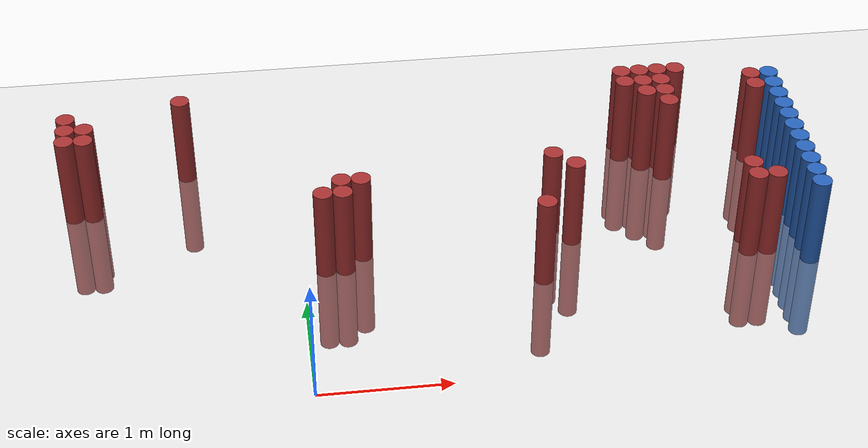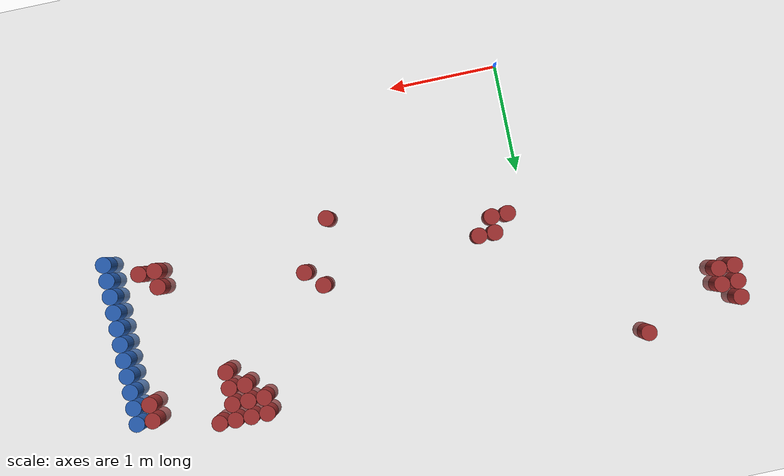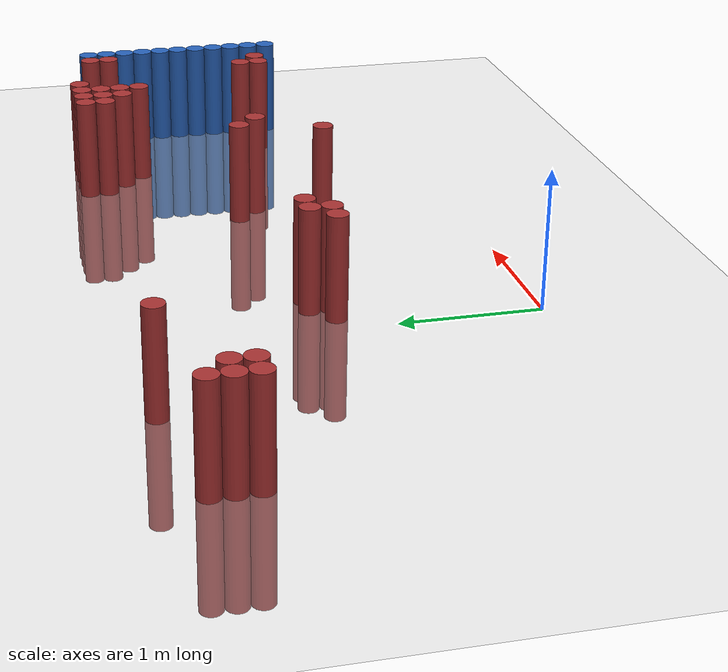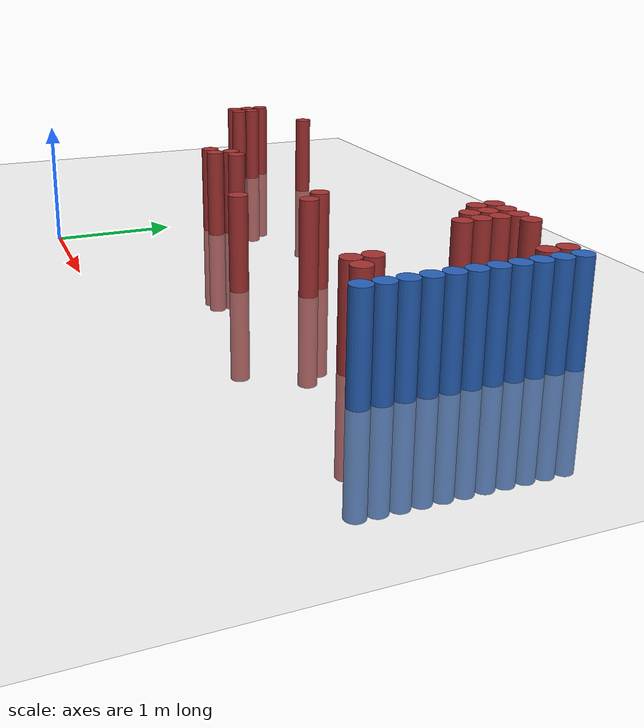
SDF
<sdf version="1.6">
 <world name="default">
  <model name="ground_plane">
   <static>1</static>
   <link name="link">
    <collision name="collision">
     <geometry><plane><normal>0 0 1</normal><size>100 100</size></plane></geometry>
     <surface><friction><ode><mu>100</mu><mu2>50</mu2></ode></friction></surface>
    </collision>
    <visual name="visual">
     <cast_shadows>0</cast_shadows>
     <geometry><plane><normal>0 0 1</normal><size>100 100</size></plane></geometry>
     <material>
      <script><uri>file://media/materials/scripts/gazebo.material</uri><name>Gazebo/Grey</name></script>
     </material>
    </visual>
   </link>
  </model>
  <model name="unit_cylinder_128">
   <static>1</static>
   <pose>3.925000 1.075000 0.000000 0.000000 0.000000 0.000000</pose>
   <link name="link">
    <inertial>
     <mass>1</mass>
     <inertia><ixx>0.145833</ixx><ixy>0</ixy><ixz>0</ixz><iyy>0.145833</iyy><iyz>0</iyz><izz>0.125</izz></inertia>
    </inertial>
    <collision name="collision">
     <geometry><cylinder><radius>0.075000</radius><length>1.5</length></cylinder></geometry>
    </collision>
    <visual name="visual">
     <geometry><cylinder><radius>0.075000</radius><length>1.5</length></cylinder></geometry>
     <material>
      <ambient>0.152000 0.379000 0.720000 1</ambient>
      <diffuse>0.152000 0.379000 0.720000 1</diffuse>
     </material>
     <material>
      <script><name>Gazebo/Grey</name><uri>file://media/materials/scripts/gazebo.material</uri></script>
     </material>
    </visual>
   </link>
  </model>
  <model name="unit_cylinder_130">
   <static>1</static>
   <pose>3.925000 1.225000 0.000000 0.000000 0.000000 0.000000</pose>
   <link name="link">
    <inertial>
     <mass>1</mass>
     <inertia><ixx>0.145833</ixx><ixy>0</ixy><ixz>0</ixz><iyy>0.145833</iyy><iyz>0</iyz><izz>0.125</izz></inertia>
    </inertial>
    <collision name="collision">
     <geometry><cylinder><radius>0.075000</radius><length>1.5</length></cylinder></geometry>
    </collision>
    <visual name="visual">
     <geometry><cylinder><radius>0.075000</radius><length>1.5</length></cylinder></geometry>
     <material>
      <ambient>0.152000 0.379000 0.720000 1</ambient>
      <diffuse>0.152000 0.379000 0.720000 1</diffuse>
     </material>
     <material>
      <script><name>Gazebo/Grey</name><uri>file://media/materials/scripts/gazebo.material</uri></script>
     </material>
    </visual>
   </link>
  </model>
  <model name="unit_cylinder_132">
   <static>1</static>
   <pose>3.925000 1.375000 0.000000 0.000000 0.000000 0.000000</pose>
   <link name="link">
    <inertial>
     <mass>1</mass>
     <inertia><ixx>0.145833</ixx><ixy>0</ixy><ixz>0</ixz><iyy>0.145833</iyy><iyz>0</iyz><izz>0.125</izz></inertia>
    </inertial>
    <collision name="collision">
     <geometry><cylinder><radius>0.075000</radius><length>1.5</length></cylinder></geometry>
    </collision>
    <visual name="visual">
     <geometry><cylinder><radius>0.075000</radius><length>1.5</length></cylinder></geometry>
     <material>
      <ambient>0.152000 0.379000 0.720000 1</ambient>
      <diffuse>0.152000 0.379000 0.720000 1</diffuse>
     </material>
     <material>
      <script><name>Gazebo/Grey</name><uri>file://media/materials/scripts/gazebo.material</uri></script>
     </material>
    </visual>
   </link>
  </model>
  <model name="unit_cylinder_134">
   <static>1</static>
   <pose>3.925000 1.525000 0.000000 0.000000 0.000000 0.000000</pose>
   <link name="link">
    <inertial>
     <mass>1</mass>
     <inertia><ixx>0.145833</ixx><ixy>0</ixy><ixz>0</ixz><iyy>0.145833</iyy><iyz>0</iyz><izz>0.125</izz></inertia>
    </inertial>
    <collision name="collision">
     <geometry><cylinder><radius>0.075000</radius><length>1.5</length></cylinder></geometry>
    </collision>
    <visual name="visual">
     <geometry><cylinder><radius>0.075000</radius><length>1.5</length></cylinder></geometry>
     <material>
      <ambient>0.152000 0.379000 0.720000 1</ambient>
      <diffuse>0.152000 0.379000 0.720000 1</diffuse>
     </material>
     <material>
      <script><name>Gazebo/Grey</name><uri>file://media/materials/scripts/gazebo.material</uri></script>
     </material>
    </visual>
   </link>
  </model>
  <model name="unit_cylinder_136">
   <static>1</static>
   <pose>3.925000 1.675000 0.000000 0.000000 0.000000 0.000000</pose>
   <link name="link">
    <inertial>
     <mass>1</mass>
     <inertia><ixx>0.145833</ixx><ixy>0</ixy><ixz>0</ixz><iyy>0.145833</iyy><iyz>0</iyz><izz>0.125</izz></inertia>
    </inertial>
    <collision name="collision">
     <geometry><cylinder><radius>0.075000</radius><length>1.5</length></cylinder></geometry>
    </collision>
    <visual name="visual">
     <geometry><cylinder><radius>0.075000</radius><length>1.5</length></cylinder></geometry>
     <material>
      <ambient>0.152000 0.379000 0.720000 1</ambient>
      <diffuse>0.152000 0.379000 0.720000 1</diffuse>
     </material>
     <material>
      <script><name>Gazebo/Grey</name><uri>file://media/materials/scripts/gazebo.material</uri></script>
     </material>
    </visual>
   </link>
  </model>
  <model name="unit_cylinder_138">
   <static>1</static>
   <pose>3.925000 1.825000 0.000000 0.000000 0.000000 0.000000</pose>
   <link name="link">
    <inertial>
     <mass>1</mass>
     <inertia><ixx>0.145833</ixx><ixy>0</ixy><ixz>0</ixz><iyy>0.145833</iyy><iyz>0</iyz><izz>0.125</izz></inertia>
    </inertial>
    <collision name="collision">
     <geometry><cylinder><radius>0.075000</radius><length>1.5</length></cylinder></geometry>
    </collision>
    <visual name="visual">
     <geometry><cylinder><radius>0.075000</radius><length>1.5</length></cylinder></geometry>
     <material>
      <ambient>0.152000 0.379000 0.720000 1</ambient>
      <diffuse>0.152000 0.379000 0.720000 1</diffuse>
     </material>
     <material>
      <script><name>Gazebo/Grey</name><uri>file://media/materials/scripts/gazebo.material</uri></script>
     </material>
    </visual>
   </link>
  </model>
  <model name="unit_cylinder_140">
   <static>1</static>
   <pose>3.925000 1.975000 0.000000 0.000000 0.000000 0.000000</pose>
   <link name="link">
    <inertial>
     <mass>1</mass>
     <inertia><ixx>0.145833</ixx><ixy>0</ixy><ixz>0</ixz><iyy>0.145833</iyy><iyz>0</iyz><izz>0.125</izz></inertia>
    </inertial>
    <collision name="collision">
     <geometry><cylinder><radius>0.075000</radius><length>1.5</length></cylinder></geometry>
    </collision>
    <visual name="visual">
     <geometry><cylinder><radius>0.075000</radius><length>1.5</length></cylinder></geometry>
     <material>
      <ambient>0.152000 0.379000 0.720000 1</ambient>
      <diffuse>0.152000 0.379000 0.720000 1</diffuse>
     </material>
     <material>
      <script><name>Gazebo/Grey</name><uri>file://media/materials/scripts/gazebo.material</uri></script>
     </material>
    </visual>
   </link>
  </model>
  <model name="unit_cylinder_142">
   <static>1</static>
   <pose>3.925000 2.125000 0.000000 0.000000 0.000000 0.000000</pose>
   <link name="link">
    <inertial>
     <mass>1</mass>
     <inertia><ixx>0.145833</ixx><ixy>0</ixy><ixz>0</ixz><iyy>0.145833</iyy><iyz>0</iyz><izz>0.125</izz></inertia>
    </inertial>
    <collision name="collision">
     <geometry><cylinder><radius>0.075000</radius><length>1.5</length></cylinder></geometry>
    </collision>
    <visual name="visual">
     <geometry><cylinder><radius>0.075000</radius><length>1.5</length></cylinder></geometry>
     <material>
      <ambient>0.152000 0.379000 0.720000 1</ambient>
      <diffuse>0.152000 0.379000 0.720000 1</diffuse>
     </material>
     <material>
      <script><name>Gazebo/Grey</name><uri>file://media/materials/scripts/gazebo.material</uri></script>
     </material>
    </visual>
   </link>
  </model>
  <model name="unit_cylinder_144">
   <static>1</static>
   <pose>3.925000 2.275000 0.000000 0.000000 0.000000 0.000000</pose>
   <link name="link">
    <inertial>
     <mass>1</mass>
     <inertia><ixx>0.145833</ixx><ixy>0</ixy><ixz>0</ixz><iyy>0.145833</iyy><iyz>0</iyz><izz>0.125</izz></inertia>
    </inertial>
    <collision name="collision">
     <geometry><cylinder><radius>0.075000</radius><length>1.5</length></cylinder></geometry>
    </collision>
    <visual name="visual">
     <geometry><cylinder><radius>0.075000</radius><length>1.5</length></cylinder></geometry>
     <material>
      <ambient>0.152000 0.379000 0.720000 1</ambient>
      <diffuse>0.152000 0.379000 0.720000 1</diffuse>
     </material>
     <material>
      <script><name>Gazebo/Grey</name><uri>file://media/materials/scripts/gazebo.material</uri></script>
     </material>
    </visual>
   </link>
  </model>
  <model name="unit_cylinder_146">
   <static>1</static>
   <pose>3.925000 2.425000 0.000000 0.000000 0.000000 0.000000</pose>
   <link name="link">
    <inertial>
     <mass>1</mass>
     <inertia><ixx>0.145833</ixx><ixy>0</ixy><ixz>0</ixz><iyy>0.145833</iyy><iyz>0</iyz><izz>0.125</izz></inertia>
    </inertial>
    <collision name="collision">
     <geometry><cylinder><radius>0.075000</radius><length>1.5</length></cylinder></geometry>
    </collision>
    <visual name="visual">
     <geometry><cylinder><radius>0.075000</radius><length>1.5</length></cylinder></geometry>
     <material>
      <ambient>0.152000 0.379000 0.720000 1</ambient>
      <diffuse>0.152000 0.379000 0.720000 1</diffuse>
     </material>
     <material>
      <script><name>Gazebo/Grey</name><uri>file://media/materials/scripts/gazebo.material</uri></script>
     </material>
    </visual>
   </link>
  </model>
  <model name="unit_cylinder_148">
   <static>1</static>
   <pose>3.925000 2.575000 0.000000 0.000000 0.000000 0.000000</pose>
   <link name="link">
    <inertial>
     <mass>1</mass>
     <inertia><ixx>0.145833</ixx><ixy>0</ixy><ixz>0</ixz><iyy>0.145833</iyy><iyz>0</iyz><izz>0.125</izz></inertia>
    </inertial>
    <collision name="collision">
     <geometry><cylinder><radius>0.075000</radius><length>1.5</length></cylinder></geometry>
    </collision>
    <visual name="visual">
     <geometry><cylinder><radius>0.075000</radius><length>1.5</length></cylinder></geometry>
     <material>
      <ambient>0.152000 0.379000 0.720000 1</ambient>
      <diffuse>0.152000 0.379000 0.720000 1</diffuse>
     </material>
     <material>
      <script><name>Gazebo/Grey</name><uri>file://media/materials/scripts/gazebo.material</uri></script>
     </material>
    </visual>
   </link>
  </model>
  <model name="unit_cylinder_312">
   <static>1</static>
   <pose>-1.775000 2.275000 0.000000 0.000000 0.000000 0.000000</pose>
   <link name="link">
    <inertial>
     <mass>1</mass>
     <inertia><ixx>0.145833</ixx><ixy>0</ixy><ixz>0</ixz><iyy>0.145833</iyy><iyz>0</iyz><izz>0.125</izz></inertia>
    </inertial>
    <collision name="collision">
     <geometry><cylinder><radius>0.075000</radius><length>1.5</length></cylinder></geometry>
    </collision>
    <visual name="visual">
     <geometry><cylinder><radius>0.075000</radius><length>1.5</length></cylinder></geometry>
     <material>
      <ambient>0.648000 0.192000 0.192000 1</ambient>
      <diffuse>0.648000 0.192000 0.192000 1</diffuse>
     </material>
     <material>
      <script><name>Gazebo/Grey</name><uri>file://media/materials/scripts/gazebo.material</uri></script>
     </material>
    </visual>
   </link>
  </model>
  <model name="unit_cylinder_313">
   <static>1</static>
   <pose>-1.775000 2.425000 0.000000 0.000000 0.000000 0.000000</pose>
   <link name="link">
    <inertial>
     <mass>1</mass>
     <inertia><ixx>0.145833</ixx><ixy>0</ixy><ixz>0</ixz><iyy>0.145833</iyy><iyz>0</iyz><izz>0.125</izz></inertia>
    </inertial>
    <collision name="collision">
     <geometry><cylinder><radius>0.075000</radius><length>1.5</length></cylinder></geometry>
    </collision>
    <visual name="visual">
     <geometry><cylinder><radius>0.075000</radius><length>1.5</length></cylinder></geometry>
     <material>
      <ambient>0.648000 0.192000 0.192000 1</ambient>
      <diffuse>0.648000 0.192000 0.192000 1</diffuse>
     </material>
     <material>
      <script><name>Gazebo/Grey</name><uri>file://media/materials/scripts/gazebo.material</uri></script>
     </material>
    </visual>
   </link>
  </model>
  <model name="unit_cylinder_314">
   <static>1</static>
   <pose>-1.775000 2.575000 0.000000 0.000000 0.000000 0.000000</pose>
   <link name="link">
    <inertial>
     <mass>1</mass>
     <inertia><ixx>0.145833</ixx><ixy>0</ixy><ixz>0</ixz><iyy>0.145833</iyy><iyz>0</iyz><izz>0.125</izz></inertia>
    </inertial>
    <collision name="collision">
     <geometry><cylinder><radius>0.075000</radius><length>1.5</length></cylinder></geometry>
    </collision>
    <visual name="visual">
     <geometry><cylinder><radius>0.075000</radius><length>1.5</length></cylinder></geometry>
     <material>
      <ambient>0.648000 0.192000 0.192000 1</ambient>
      <diffuse>0.648000 0.192000 0.192000 1</diffuse>
     </material>
     <material>
      <script><name>Gazebo/Grey</name><uri>file://media/materials/scripts/gazebo.material</uri></script>
     </material>
    </visual>
   </link>
  </model>
  <model name="unit_cylinder_317">
   <static>1</static>
   <pose>-1.625000 2.275000 0.000000 0.000000 0.000000 0.000000</pose>
   <link name="link">
    <inertial>
     <mass>1</mass>
     <inertia><ixx>0.145833</ixx><ixy>0</ixy><ixz>0</ixz><iyy>0.145833</iyy><iyz>0</iyz><izz>0.125</izz></inertia>
    </inertial>
    <collision name="collision">
     <geometry><cylinder><radius>0.075000</radius><length>1.5</length></cylinder></geometry>
    </collision>
    <visual name="visual">
     <geometry><cylinder><radius>0.075000</radius><length>1.5</length></cylinder></geometry>
     <material>
      <ambient>0.648000 0.192000 0.192000 1</ambient>
      <diffuse>0.648000 0.192000 0.192000 1</diffuse>
     </material>
     <material>
      <script><name>Gazebo/Grey</name><uri>file://media/materials/scripts/gazebo.material</uri></script>
     </material>
    </visual>
   </link>
  </model>
  <model name="unit_cylinder_318">
   <static>1</static>
   <pose>-1.625000 2.425000 0.000000 0.000000 0.000000 0.000000</pose>
   <link name="link">
    <inertial>
     <mass>1</mass>
     <inertia><ixx>0.145833</ixx><ixy>0</ixy><ixz>0</ixz><iyy>0.145833</iyy><iyz>0</iyz><izz>0.125</izz></inertia>
    </inertial>
    <collision name="collision">
     <geometry><cylinder><radius>0.075000</radius><length>1.5</length></cylinder></geometry>
    </collision>
    <visual name="visual">
     <geometry><cylinder><radius>0.075000</radius><length>1.5</length></cylinder></geometry>
     <material>
      <ambient>0.648000 0.192000 0.192000 1</ambient>
      <diffuse>0.648000 0.192000 0.192000 1</diffuse>
     </material>
     <material>
      <script><name>Gazebo/Grey</name><uri>file://media/materials/scripts/gazebo.material</uri></script>
     </material>
    </visual>
   </link>
  </model>
  <model name="unit_cylinder_330">
   <static>1</static>
   <pose>-0.875000 2.725000 0.000000 0.000000 0.000000 0.000000</pose>
   <link name="link">
    <inertial>
     <mass>1</mass>
     <inertia><ixx>0.145833</ixx><ixy>0</ixy><ixz>0</ixz><iyy>0.145833</iyy><iyz>0</iyz><izz>0.125</izz></inertia>
    </inertial>
    <collision name="collision">
     <geometry><cylinder><radius>0.075000</radius><length>1.5</length></cylinder></geometry>
    </collision>
    <visual name="visual">
     <geometry><cylinder><radius>0.075000</radius><length>1.5</length></cylinder></geometry>
     <material>
      <ambient>0.648000 0.192000 0.192000 1</ambient>
      <diffuse>0.648000 0.192000 0.192000 1</diffuse>
     </material>
     <material>
      <script><name>Gazebo/Grey</name><uri>file://media/materials/scripts/gazebo.material</uri></script>
     </material>
    </visual>
   </link>
  </model>
  <model name="unit_cylinder_360">
   <static>1</static>
   <pose>0.175000 1.375000 0.000000 0.000000 0.000000 0.000000</pose>
   <link name="link">
    <inertial>
     <mass>1</mass>
     <inertia><ixx>0.145833</ixx><ixy>0</ixy><ixz>0</ixz><iyy>0.145833</iyy><iyz>0</iyz><izz>0.125</izz></inertia>
    </inertial>
    <collision name="collision">
     <geometry><cylinder><radius>0.075000</radius><length>1.5</length></cylinder></geometry>
    </collision>
    <visual name="visual">
     <geometry><cylinder><radius>0.075000</radius><length>1.5</length></cylinder></geometry>
     <material>
      <ambient>0.648000 0.192000 0.192000 1</ambient>
      <diffuse>0.648000 0.192000 0.192000 1</diffuse>
     </material>
     <material>
      <script><name>Gazebo/Grey</name><uri>file://media/materials/scripts/gazebo.material</uri></script>
     </material>
    </visual>
   </link>
  </model>
  <model name="unit_cylinder_364">
   <static>1</static>
   <pose>0.325000 1.375000 0.000000 0.000000 0.000000 0.000000</pose>
   <link name="link">
    <inertial>
     <mass>1</mass>
     <inertia><ixx>0.145833</ixx><ixy>0</ixy><ixz>0</ixz><iyy>0.145833</iyy><iyz>0</iyz><izz>0.125</izz></inertia>
    </inertial>
    <collision name="collision">
     <geometry><cylinder><radius>0.075000</radius><length>1.5</length></cylinder></geometry>
    </collision>
    <visual name="visual">
     <geometry><cylinder><radius>0.075000</radius><length>1.5</length></cylinder></geometry>
     <material>
      <ambient>0.648000 0.192000 0.192000 1</ambient>
      <diffuse>0.648000 0.192000 0.192000 1</diffuse>
     </material>
     <material>
      <script><name>Gazebo/Grey</name><uri>file://media/materials/scripts/gazebo.material</uri></script>
     </material>
    </visual>
   </link>
  </model>
  <model name="unit_cylinder_365">
   <static>1</static>
   <pose>0.325000 1.525000 0.000000 0.000000 0.000000 0.000000</pose>
   <link name="link">
    <inertial>
     <mass>1</mass>
     <inertia><ixx>0.145833</ixx><ixy>0</ixy><ixz>0</ixz><iyy>0.145833</iyy><iyz>0</iyz><izz>0.125</izz></inertia>
    </inertial>
    <collision name="collision">
     <geometry><cylinder><radius>0.075000</radius><length>1.5</length></cylinder></geometry>
    </collision>
    <visual name="visual">
     <geometry><cylinder><radius>0.075000</radius><length>1.5</length></cylinder></geometry>
     <material>
      <ambient>0.648000 0.192000 0.192000 1</ambient>
      <diffuse>0.648000 0.192000 0.192000 1</diffuse>
     </material>
     <material>
      <script><name>Gazebo/Grey</name><uri>file://media/materials/scripts/gazebo.material</uri></script>
     </material>
    </visual>
   </link>
  </model>
  <model name="unit_cylinder_368">
   <static>1</static>
   <pose>0.475000 1.525000 0.000000 0.000000 0.000000 0.000000</pose>
   <link name="link">
    <inertial>
     <mass>1</mass>
     <inertia><ixx>0.145833</ixx><ixy>0</ixy><ixz>0</ixz><iyy>0.145833</iyy><iyz>0</iyz><izz>0.125</izz></inertia>
    </inertial>
    <collision name="collision">
     <geometry><cylinder><radius>0.075000</radius><length>1.5</length></cylinder></geometry>
    </collision>
    <visual name="visual">
     <geometry><cylinder><radius>0.075000</radius><length>1.5</length></cylinder></geometry>
     <material>
      <ambient>0.648000 0.192000 0.192000 1</ambient>
      <diffuse>0.648000 0.192000 0.192000 1</diffuse>
     </material>
     <material>
      <script><name>Gazebo/Grey</name><uri>file://media/materials/scripts/gazebo.material</uri></script>
     </material>
    </visual>
   </link>
  </model>
  <model name="unit_cylinder_377">
   <static>1</static>
   <pose>1.825000 1.075000 0.000000 0.000000 0.000000 0.000000</pose>
   <link name="link">
    <inertial>
     <mass>1</mass>
     <inertia><ixx>0.145833</ixx><ixy>0</ixy><ixz>0</ixz><iyy>0.145833</iyy><iyz>0</iyz><izz>0.125</izz></inertia>
    </inertial>
    <collision name="collision">
     <geometry><cylinder><radius>0.075000</radius><length>1.5</length></cylinder></geometry>
    </collision>
    <visual name="visual">
     <geometry><cylinder><radius>0.075000</radius><length>1.5</length></cylinder></geometry>
     <material>
      <ambient>0.648000 0.192000 0.192000 1</ambient>
      <diffuse>0.648000 0.192000 0.192000 1</diffuse>
     </material>
     <material>
      <script><name>Gazebo/Grey</name><uri>file://media/materials/scripts/gazebo.material</uri></script>
     </material>
    </visual>
   </link>
  </model>
  <model name="unit_cylinder_380">
   <static>1</static>
   <pose>1.975000 1.675000 0.000000 0.000000 0.000000 0.000000</pose>
   <link name="link">
    <inertial>
     <mass>1</mass>
     <inertia><ixx>0.145833</ixx><ixy>0</ixy><ixz>0</ixz><iyy>0.145833</iyy><iyz>0</iyz><izz>0.125</izz></inertia>
    </inertial>
    <collision name="collision">
     <geometry><cylinder><radius>0.075000</radius><length>1.5</length></cylinder></geometry>
    </collision>
    <visual name="visual">
     <geometry><cylinder><radius>0.075000</radius><length>1.5</length></cylinder></geometry>
     <material>
      <ambient>0.648000 0.192000 0.192000 1</ambient>
      <diffuse>0.648000 0.192000 0.192000 1</diffuse>
     </material>
     <material>
      <script><name>Gazebo/Grey</name><uri>file://media/materials/scripts/gazebo.material</uri></script>
     </material>
    </visual>
   </link>
  </model>
  <model name="unit_cylinder_385">
   <static>1</static>
   <pose>2.125000 1.525000 0.000000 0.000000 0.000000 0.000000</pose>
   <link name="link">
    <inertial>
     <mass>1</mass>
     <inertia><ixx>0.145833</ixx><ixy>0</ixy><ixz>0</ixz><iyy>0.145833</iyy><iyz>0</iyz><izz>0.125</izz></inertia>
    </inertial>
    <collision name="collision">
     <geometry><cylinder><radius>0.075000</radius><length>1.5</length></cylinder></geometry>
    </collision>
    <visual name="visual">
     <geometry><cylinder><radius>0.075000</radius><length>1.5</length></cylinder></geometry>
     <material>
      <ambient>0.648000 0.192000 0.192000 1</ambient>
      <diffuse>0.648000 0.192000 0.192000 1</diffuse>
     </material>
     <material>
      <script><name>Gazebo/Grey</name><uri>file://media/materials/scripts/gazebo.material</uri></script>
     </material>
    </visual>
   </link>
  </model>
  <model name="unit_cylinder_403">
   <static>1</static>
   <pose>2.725000 2.575000 0.000000 0.000000 0.000000 0.000000</pose>
   <link name="link">
    <inertial>
     <mass>1</mass>
     <inertia><ixx>0.145833</ixx><ixy>0</ixy><ixz>0</ixz><iyy>0.145833</iyy><iyz>0</iyz><izz>0.125</izz></inertia>
    </inertial>
    <collision name="collision">
     <geometry><cylinder><radius>0.075000</radius><length>1.5</length></cylinder></geometry>
    </collision>
    <visual name="visual">
     <geometry><cylinder><radius>0.075000</radius><length>1.5</length></cylinder></geometry>
     <material>
      <ambient>0.648000 0.192000 0.192000 1</ambient>
      <diffuse>0.648000 0.192000 0.192000 1</diffuse>
     </material>
     <material>
      <script><name>Gazebo/Grey</name><uri>file://media/materials/scripts/gazebo.material</uri></script>
     </material>
    </visual>
   </link>
  </model>
  <model name="unit_cylinder_404">
   <static>1</static>
   <pose>2.725000 2.725000 0.000000 0.000000 0.000000 0.000000</pose>
   <link name="link">
    <inertial>
     <mass>1</mass>
     <inertia><ixx>0.145833</ixx><ixy>0</ixy><ixz>0</ixz><iyy>0.145833</iyy><iyz>0</iyz><izz>0.125</izz></inertia>
    </inertial>
    <collision name="collision">
     <geometry><cylinder><radius>0.075000</radius><length>1.5</length></cylinder></geometry>
    </collision>
    <visual name="visual">
     <geometry><cylinder><radius>0.075000</radius><length>1.5</length></cylinder></geometry>
     <material>
      <ambient>0.648000 0.192000 0.192000 1</ambient>
      <diffuse>0.648000 0.192000 0.192000 1</diffuse>
     </material>
     <material>
      <script><name>Gazebo/Grey</name><uri>file://media/materials/scripts/gazebo.material</uri></script>
     </material>
    </visual>
   </link>
  </model>
  <model name="unit_cylinder_407">
   <static>1</static>
   <pose>2.875000 2.425000 0.000000 0.000000 0.000000 0.000000</pose>
   <link name="link">
    <inertial>
     <mass>1</mass>
     <inertia><ixx>0.145833</ixx><ixy>0</ixy><ixz>0</ixz><iyy>0.145833</iyy><iyz>0</iyz><izz>0.125</izz></inertia>
    </inertial>
    <collision name="collision">
     <geometry><cylinder><radius>0.075000</radius><length>1.5</length></cylinder></geometry>
    </collision>
    <visual name="visual">
     <geometry><cylinder><radius>0.075000</radius><length>1.5</length></cylinder></geometry>
     <material>
      <ambient>0.648000 0.192000 0.192000 1</ambient>
      <diffuse>0.648000 0.192000 0.192000 1</diffuse>
     </material>
     <material>
      <script><name>Gazebo/Grey</name><uri>file://media/materials/scripts/gazebo.material</uri></script>
     </material>
    </visual>
   </link>
  </model>
  <model name="unit_cylinder_408">
   <static>1</static>
   <pose>2.875000 2.575000 0.000000 0.000000 0.000000 0.000000</pose>
   <link name="link">
    <inertial>
     <mass>1</mass>
     <inertia><ixx>0.145833</ixx><ixy>0</ixy><ixz>0</ixz><iyy>0.145833</iyy><iyz>0</iyz><izz>0.125</izz></inertia>
    </inertial>
    <collision name="collision">
     <geometry><cylinder><radius>0.075000</radius><length>1.5</length></cylinder></geometry>
    </collision>
    <visual name="visual">
     <geometry><cylinder><radius>0.075000</radius><length>1.5</length></cylinder></geometry>
     <material>
      <ambient>0.648000 0.192000 0.192000 1</ambient>
      <diffuse>0.648000 0.192000 0.192000 1</diffuse>
     </material>
     <material>
      <script><name>Gazebo/Grey</name><uri>file://media/materials/scripts/gazebo.material</uri></script>
     </material>
    </visual>
   </link>
  </model>
  <model name="unit_cylinder_409">
   <static>1</static>
   <pose>2.875000 2.725000 0.000000 0.000000 0.000000 0.000000</pose>
   <link name="link">
    <inertial>
     <mass>1</mass>
     <inertia><ixx>0.145833</ixx><ixy>0</ixy><ixz>0</ixz><iyy>0.145833</iyy><iyz>0</iyz><izz>0.125</izz></inertia>
    </inertial>
    <collision name="collision">
     <geometry><cylinder><radius>0.075000</radius><length>1.5</length></cylinder></geometry>
    </collision>
    <visual name="visual">
     <geometry><cylinder><radius>0.075000</radius><length>1.5</length></cylinder></geometry>
     <material>
      <ambient>0.648000 0.192000 0.192000 1</ambient>
      <diffuse>0.648000 0.192000 0.192000 1</diffuse>
     </material>
     <material>
      <script><name>Gazebo/Grey</name><uri>file://media/materials/scripts/gazebo.material</uri></script>
     </material>
    </visual>
   </link>
  </model>
  <model name="unit_cylinder_414">
   <static>1</static>
   <pose>3.025000 2.275000 0.000000 0.000000 0.000000 0.000000</pose>
   <link name="link">
    <inertial>
     <mass>1</mass>
     <inertia><ixx>0.145833</ixx><ixy>0</ixy><ixz>0</ixz><iyy>0.145833</iyy><iyz>0</iyz><izz>0.125</izz></inertia>
    </inertial>
    <collision name="collision">
     <geometry><cylinder><radius>0.075000</radius><length>1.5</length></cylinder></geometry>
    </collision>
    <visual name="visual">
     <geometry><cylinder><radius>0.075000</radius><length>1.5</length></cylinder></geometry>
     <material>
      <ambient>0.648000 0.192000 0.192000 1</ambient>
      <diffuse>0.648000 0.192000 0.192000 1</diffuse>
     </material>
     <material>
      <script><name>Gazebo/Grey</name><uri>file://media/materials/scripts/gazebo.material</uri></script>
     </material>
    </visual>
   </link>
  </model>
  <model name="unit_cylinder_415">
   <static>1</static>
   <pose>3.025000 2.425000 0.000000 0.000000 0.000000 0.000000</pose>
   <link name="link">
    <inertial>
     <mass>1</mass>
     <inertia><ixx>0.145833</ixx><ixy>0</ixy><ixz>0</ixz><iyy>0.145833</iyy><iyz>0</iyz><izz>0.125</izz></inertia>
    </inertial>
    <collision name="collision">
     <geometry><cylinder><radius>0.075000</radius><length>1.5</length></cylinder></geometry>
    </collision>
    <visual name="visual">
     <geometry><cylinder><radius>0.075000</radius><length>1.5</length></cylinder></geometry>
     <material>
      <ambient>0.648000 0.192000 0.192000 1</ambient>
      <diffuse>0.648000 0.192000 0.192000 1</diffuse>
     </material>
     <material>
      <script><name>Gazebo/Grey</name><uri>file://media/materials/scripts/gazebo.material</uri></script>
     </material>
    </visual>
   </link>
  </model>
  <model name="unit_cylinder_416">
   <static>1</static>
   <pose>3.025000 2.575000 0.000000 0.000000 0.000000 0.000000</pose>
   <link name="link">
    <inertial>
     <mass>1</mass>
     <inertia><ixx>0.145833</ixx><ixy>0</ixy><ixz>0</ixz><iyy>0.145833</iyy><iyz>0</iyz><izz>0.125</izz></inertia>
    </inertial>
    <collision name="collision">
     <geometry><cylinder><radius>0.075000</radius><length>1.5</length></cylinder></geometry>
    </collision>
    <visual name="visual">
     <geometry><cylinder><radius>0.075000</radius><length>1.5</length></cylinder></geometry>
     <material>
      <ambient>0.648000 0.192000 0.192000 1</ambient>
      <diffuse>0.648000 0.192000 0.192000 1</diffuse>
     </material>
     <material>
      <script><name>Gazebo/Grey</name><uri>file://media/materials/scripts/gazebo.material</uri></script>
     </material>
    </visual>
   </link>
  </model>
  <model name="unit_cylinder_417">
   <static>1</static>
   <pose>3.025000 2.725000 0.000000 0.000000 0.000000 0.000000</pose>
   <link name="link">
    <inertial>
     <mass>1</mass>
     <inertia><ixx>0.145833</ixx><ixy>0</ixy><ixz>0</ixz><iyy>0.145833</iyy><iyz>0</iyz><izz>0.125</izz></inertia>
    </inertial>
    <collision name="collision">
     <geometry><cylinder><radius>0.075000</radius><length>1.5</length></cylinder></geometry>
    </collision>
    <visual name="visual">
     <geometry><cylinder><radius>0.075000</radius><length>1.5</length></cylinder></geometry>
     <material>
      <ambient>0.648000 0.192000 0.192000 1</ambient>
      <diffuse>0.648000 0.192000 0.192000 1</diffuse>
     </material>
     <material>
      <script><name>Gazebo/Grey</name><uri>file://media/materials/scripts/gazebo.material</uri></script>
     </material>
    </visual>
   </link>
  </model>
  <model name="unit_cylinder_424">
   <static>1</static>
   <pose>3.175000 2.725000 0.000000 0.000000 0.000000 0.000000</pose>
   <link name="link">
    <inertial>
     <mass>1</mass>
     <inertia><ixx>0.145833</ixx><ixy>0</ixy><ixz>0</ixz><iyy>0.145833</iyy><iyz>0</iyz><izz>0.125</izz></inertia>
    </inertial>
    <collision name="collision">
     <geometry><cylinder><radius>0.075000</radius><length>1.5</length></cylinder></geometry>
    </collision>
    <visual name="visual">
     <geometry><cylinder><radius>0.075000</radius><length>1.5</length></cylinder></geometry>
     <material>
      <ambient>0.648000 0.192000 0.192000 1</ambient>
      <diffuse>0.648000 0.192000 0.192000 1</diffuse>
     </material>
     <material>
      <script><name>Gazebo/Grey</name><uri>file://media/materials/scripts/gazebo.material</uri></script>
     </material>
    </visual>
   </link>
  </model>
  <model name="unit_cylinder_427">
   <static>1</static>
   <pose>3.475000 1.225000 0.000000 0.000000 0.000000 0.000000</pose>
   <link name="link">
    <inertial>
     <mass>1</mass>
     <inertia><ixx>0.145833</ixx><ixy>0</ixy><ixz>0</ixz><iyy>0.145833</iyy><iyz>0</iyz><izz>0.125</izz></inertia>
    </inertial>
    <collision name="collision">
     <geometry><cylinder><radius>0.075000</radius><length>1.5</length></cylinder></geometry>
    </collision>
    <visual name="visual">
     <geometry><cylinder><radius>0.075000</radius><length>1.5</length></cylinder></geometry>
     <material>
      <ambient>0.648000 0.192000 0.192000 1</ambient>
      <diffuse>0.648000 0.192000 0.192000 1</diffuse>
     </material>
     <material>
      <script><name>Gazebo/Grey</name><uri>file://media/materials/scripts/gazebo.material</uri></script>
     </material>
    </visual>
   </link>
  </model>
  <model name="unit_cylinder_428">
   <static>1</static>
   <pose>3.475000 1.375000 0.000000 0.000000 0.000000 0.000000</pose>
   <link name="link">
    <inertial>
     <mass>1</mass>
     <inertia><ixx>0.145833</ixx><ixy>0</ixy><ixz>0</ixz><iyy>0.145833</iyy><iyz>0</iyz><izz>0.125</izz></inertia>
    </inertial>
    <collision name="collision">
     <geometry><cylinder><radius>0.075000</radius><length>1.5</length></cylinder></geometry>
    </collision>
    <visual name="visual">
     <geometry><cylinder><radius>0.075000</radius><length>1.5</length></cylinder></geometry>
     <material>
      <ambient>0.648000 0.192000 0.192000 1</ambient>
      <diffuse>0.648000 0.192000 0.192000 1</diffuse>
     </material>
     <material>
      <script><name>Gazebo/Grey</name><uri>file://media/materials/scripts/gazebo.material</uri></script>
     </material>
    </visual>
   </link>
  </model>
  <model name="unit_cylinder_433">
   <static>1</static>
   <pose>3.625000 1.225000 0.000000 0.000000 0.000000 0.000000</pose>
   <link name="link">
    <inertial>
     <mass>1</mass>
     <inertia><ixx>0.145833</ixx><ixy>0</ixy><ixz>0</ixz><iyy>0.145833</iyy><iyz>0</iyz><izz>0.125</izz></inertia>
    </inertial>
    <collision name="collision">
     <geometry><cylinder><radius>0.075000</radius><length>1.5</length></cylinder></geometry>
    </collision>
    <visual name="visual">
     <geometry><cylinder><radius>0.075000</radius><length>1.5</length></cylinder></geometry>
     <material>
      <ambient>0.648000 0.192000 0.192000 1</ambient>
      <diffuse>0.648000 0.192000 0.192000 1</diffuse>
     </material>
     <material>
      <script><name>Gazebo/Grey</name><uri>file://media/materials/scripts/gazebo.material</uri></script>
     </material>
    </visual>
   </link>
  </model>
  <model name="unit_cylinder_440">
   <static>1</static>
   <pose>3.775000 2.425000 0.000000 0.000000 0.000000 0.000000</pose>
   <link name="link">
    <inertial>
     <mass>1</mass>
     <inertia><ixx>0.145833</ixx><ixy>0</ixy><ixz>0</ixz><iyy>0.145833</iyy><iyz>0</iyz><izz>0.125</izz></inertia>
    </inertial>
    <collision name="collision">
     <geometry><cylinder><radius>0.075000</radius><length>1.5</length></cylinder></geometry>
    </collision>
    <visual name="visual">
     <geometry><cylinder><radius>0.075000</radius><length>1.5</length></cylinder></geometry>
     <material>
      <ambient>0.648000 0.192000 0.192000 1</ambient>
      <diffuse>0.648000 0.192000 0.192000 1</diffuse>
     </material>
     <material>
      <script><name>Gazebo/Grey</name><uri>file://media/materials/scripts/gazebo.material</uri></script>
     </material>
    </visual>
   </link>
  </model>
  <model name="unit_cylinder_441">
   <static>1</static>
   <pose>3.775000 2.575000 0.000000 0.000000 0.000000 0.000000</pose>
   <link name="link">
    <inertial>
     <mass>1</mass>
     <inertia><ixx>0.145833</ixx><ixy>0</ixy><ixz>0</ixz><iyy>0.145833</iyy><iyz>0</iyz><izz>0.125</izz></inertia>
    </inertial>
    <collision name="collision">
     <geometry><cylinder><radius>0.075000</radius><length>1.5</length></cylinder></geometry>
    </collision>
    <visual name="visual">
     <geometry><cylinder><radius>0.075000</radius><length>1.5</length></cylinder></geometry>
     <material>
      <ambient>0.648000 0.192000 0.192000 1</ambient>
      <diffuse>0.648000 0.192000 0.192000 1</diffuse>
     </material>
     <material>
      <script><name>Gazebo/Grey</name><uri>file://media/materials/scripts/gazebo.material</uri></script>
     </material>
    </visual>
   </link>
  </model>
  <model name="unit_cylinder_469">
   <static>1</static>
   <pose>3.925000 1.075000 0.000000 0.000000 0.000000 0.000000</pose>
   <link name="link">
    <inertial>
     <mass>1</mass>
     <inertia><ixx>0.145833</ixx><ixy>0</ixy><ixz>0</ixz><iyy>0.145833</iyy><iyz>0</iyz><izz>0.125</izz></inertia>
    </inertial>
    <collision name="collision">
     <geometry><cylinder><radius>0.075000</radius><length>1.5</length></cylinder></geometry>
    </collision>
    <visual name="visual">
     <geometry><cylinder><radius>0.075000</radius><length>1.5</length></cylinder></geometry>
     <material>
      <ambient>0.152000 0.379000 0.720000 1</ambient>
      <diffuse>0.152000 0.379000 0.720000 1</diffuse>
     </material>
     <material>
      <script><name>Gazebo/Grey</name><uri>file://media/materials/scripts/gazebo.material</uri></script>
     </material>
    </visual>
   </link>
  </model>
  <model name="unit_cylinder_470">
   <static>1</static>
   <pose>3.925000 1.225000 0.000000 0.000000 0.000000 0.000000</pose>
   <link name="link">
    <inertial>
     <mass>1</mass>
     <inertia><ixx>0.145833</ixx><ixy>0</ixy><ixz>0</ixz><iyy>0.145833</iyy><iyz>0</iyz><izz>0.125</izz></inertia>
    </inertial>
    <collision name="collision">
     <geometry><cylinder><radius>0.075000</radius><length>1.5</length></cylinder></geometry>
    </collision>
    <visual name="visual">
     <geometry><cylinder><radius>0.075000</radius><length>1.5</length></cylinder></geometry>
     <material>
      <ambient>0.152000 0.379000 0.720000 1</ambient>
      <diffuse>0.152000 0.379000 0.720000 1</diffuse>
     </material>
     <material>
      <script><name>Gazebo/Grey</name><uri>file://media/materials/scripts/gazebo.material</uri></script>
     </material>
    </visual>
   </link>
  </model>
  <model name="unit_cylinder_471">
   <static>1</static>
   <pose>3.925000 1.375000 0.000000 0.000000 0.000000 0.000000</pose>
   <link name="link">
    <inertial>
     <mass>1</mass>
     <inertia><ixx>0.145833</ixx><ixy>0</ixy><ixz>0</ixz><iyy>0.145833</iyy><iyz>0</iyz><izz>0.125</izz></inertia>
    </inertial>
    <collision name="collision">
     <geometry><cylinder><radius>0.075000</radius><length>1.5</length></cylinder></geometry>
    </collision>
    <visual name="visual">
     <geometry><cylinder><radius>0.075000</radius><length>1.5</length></cylinder></geometry>
     <material>
      <ambient>0.152000 0.379000 0.720000 1</ambient>
      <diffuse>0.152000 0.379000 0.720000 1</diffuse>
     </material>
     <material>
      <script><name>Gazebo/Grey</name><uri>file://media/materials/scripts/gazebo.material</uri></script>
     </material>
    </visual>
   </link>
  </model>
  <model name="unit_cylinder_472">
   <static>1</static>
   <pose>3.925000 1.525000 0.000000 0.000000 0.000000 0.000000</pose>
   <link name="link">
    <inertial>
     <mass>1</mass>
     <inertia><ixx>0.145833</ixx><ixy>0</ixy><ixz>0</ixz><iyy>0.145833</iyy><iyz>0</iyz><izz>0.125</izz></inertia>
    </inertial>
    <collision name="collision">
     <geometry><cylinder><radius>0.075000</radius><length>1.5</length></cylinder></geometry>
    </collision>
    <visual name="visual">
     <geometry><cylinder><radius>0.075000</radius><length>1.5</length></cylinder></geometry>
     <material>
      <ambient>0.152000 0.379000 0.720000 1</ambient>
      <diffuse>0.152000 0.379000 0.720000 1</diffuse>
     </material>
     <material>
      <script><name>Gazebo/Grey</name><uri>file://media/materials/scripts/gazebo.material</uri></script>
     </material>
    </visual>
   </link>
  </model>
  <model name="unit_cylinder_473">
   <static>1</static>
   <pose>3.925000 1.675000 0.000000 0.000000 0.000000 0.000000</pose>
   <link name="link">
    <inertial>
     <mass>1</mass>
     <inertia><ixx>0.145833</ixx><ixy>0</ixy><ixz>0</ixz><iyy>0.145833</iyy><iyz>0</iyz><izz>0.125</izz></inertia>
    </inertial>
    <collision name="collision">
     <geometry><cylinder><radius>0.075000</radius><length>1.5</length></cylinder></geometry>
    </collision>
    <visual name="visual">
     <geometry><cylinder><radius>0.075000</radius><length>1.5</length></cylinder></geometry>
     <material>
      <ambient>0.152000 0.379000 0.720000 1</ambient>
      <diffuse>0.152000 0.379000 0.720000 1</diffuse>
     </material>
     <material>
      <script><name>Gazebo/Grey</name><uri>file://media/materials/scripts/gazebo.material</uri></script>
     </material>
    </visual>
   </link>
  </model>
  <model name="unit_cylinder_474">
   <static>1</static>
   <pose>3.925000 1.825000 0.000000 0.000000 0.000000 0.000000</pose>
   <link name="link">
    <inertial>
     <mass>1</mass>
     <inertia><ixx>0.145833</ixx><ixy>0</ixy><ixz>0</ixz><iyy>0.145833</iyy><iyz>0</iyz><izz>0.125</izz></inertia>
    </inertial>
    <collision name="collision">
     <geometry><cylinder><radius>0.075000</radius><length>1.5</length></cylinder></geometry>
    </collision>
    <visual name="visual">
     <geometry><cylinder><radius>0.075000</radius><length>1.5</length></cylinder></geometry>
     <material>
      <ambient>0.152000 0.379000 0.720000 1</ambient>
      <diffuse>0.152000 0.379000 0.720000 1</diffuse>
     </material>
     <material>
      <script><name>Gazebo/Grey</name><uri>file://media/materials/scripts/gazebo.material</uri></script>
     </material>
    </visual>
   </link>
  </model>
  <model name="unit_cylinder_475">
   <static>1</static>
   <pose>3.925000 1.975000 0.000000 0.000000 0.000000 0.000000</pose>
   <link name="link">
    <inertial>
     <mass>1</mass>
     <inertia><ixx>0.145833</ixx><ixy>0</ixy><ixz>0</ixz><iyy>0.145833</iyy><iyz>0</iyz><izz>0.125</izz></inertia>
    </inertial>
    <collision name="collision">
     <geometry><cylinder><radius>0.075000</radius><length>1.5</length></cylinder></geometry>
    </collision>
    <visual name="visual">
     <geometry><cylinder><radius>0.075000</radius><length>1.5</length></cylinder></geometry>
     <material>
      <ambient>0.152000 0.379000 0.720000 1</ambient>
      <diffuse>0.152000 0.379000 0.720000 1</diffuse>
     </material>
     <material>
      <script><name>Gazebo/Grey</name><uri>file://media/materials/scripts/gazebo.material</uri></script>
     </material>
    </visual>
   </link>
  </model>
  <model name="unit_cylinder_476">
   <static>1</static>
   <pose>3.925000 2.125000 0.000000 0.000000 0.000000 0.000000</pose>
   <link name="link">
    <inertial>
     <mass>1</mass>
     <inertia><ixx>0.145833</ixx><ixy>0</ixy><ixz>0</ixz><iyy>0.145833</iyy><iyz>0</iyz><izz>0.125</izz></inertia>
    </inertial>
    <collision name="collision">
     <geometry><cylinder><radius>0.075000</radius><length>1.5</length></cylinder></geometry>
    </collision>
    <visual name="visual">
     <geometry><cylinder><radius>0.075000</radius><length>1.5</length></cylinder></geometry>
     <material>
      <ambient>0.152000 0.379000 0.720000 1</ambient>
      <diffuse>0.152000 0.379000 0.720000 1</diffuse>
     </material>
     <material>
      <script><name>Gazebo/Grey</name><uri>file://media/materials/scripts/gazebo.material</uri></script>
     </material>
    </visual>
   </link>
  </model>
  <model name="unit_cylinder_477">
   <static>1</static>
   <pose>3.925000 2.275000 0.000000 0.000000 0.000000 0.000000</pose>
   <link name="link">
    <inertial>
     <mass>1</mass>
     <inertia><ixx>0.145833</ixx><ixy>0</ixy><ixz>0</ixz><iyy>0.145833</iyy><iyz>0</iyz><izz>0.125</izz></inertia>
    </inertial>
    <collision name="collision">
     <geometry><cylinder><radius>0.075000</radius><length>1.5</length></cylinder></geometry>
    </collision>
    <visual name="visual">
     <geometry><cylinder><radius>0.075000</radius><length>1.5</length></cylinder></geometry>
     <material>
      <ambient>0.152000 0.379000 0.720000 1</ambient>
      <diffuse>0.152000 0.379000 0.720000 1</diffuse>
     </material>
     <material>
      <script><name>Gazebo/Grey</name><uri>file://media/materials/scripts/gazebo.material</uri></script>
     </material>
    </visual>
   </link>
  </model>
  <model name="unit_cylinder_478">
   <static>1</static>
   <pose>3.925000 2.425000 0.000000 0.000000 0.000000 0.000000</pose>
   <link name="link">
    <inertial>
     <mass>1</mass>
     <inertia><ixx>0.145833</ixx><ixy>0</ixy><ixz>0</ixz><iyy>0.145833</iyy><iyz>0</iyz><izz>0.125</izz></inertia>
    </inertial>
    <collision name="collision">
     <geometry><cylinder><radius>0.075000</radius><length>1.5</length></cylinder></geometry>
    </collision>
    <visual name="visual">
     <geometry><cylinder><radius>0.075000</radius><length>1.5</length></cylinder></geometry>
     <material>
      <ambient>0.152000 0.379000 0.720000 1</ambient>
      <diffuse>0.152000 0.379000 0.720000 1</diffuse>
     </material>
     <material>
      <script><name>Gazebo/Grey</name><uri>file://media/materials/scripts/gazebo.material</uri></script>
     </material>
    </visual>
   </link>
  </model>
  <model name="unit_cylinder_479">
   <static>1</static>
   <pose>3.925000 2.575000 0.000000 0.000000 0.000000 0.000000</pose>
   <link name="link">
    <inertial>
     <mass>1</mass>
     <inertia><ixx>0.145833</ixx><ixy>0</ixy><ixz>0</ixz><iyy>0.145833</iyy><iyz>0</iyz><izz>0.125</izz></inertia>
    </inertial>
    <collision name="collision">
     <geometry><cylinder><radius>0.075000</radius><length>1.5</length></cylinder></geometry>
    </collision>
    <visual name="visual">
     <geometry><cylinder><radius>0.075000</radius><length>1.5</length></cylinder></geometry>
     <material>
      <ambient>0.152000 0.379000 0.720000 1</ambient>
      <diffuse>0.152000 0.379000 0.720000 1</diffuse>
     </material>
     <material>
      <script><name>Gazebo/Grey</name><uri>file://media/materials/scripts/gazebo.material</uri></script>
     </material>
    </visual>
   </link>
  </model>
 </world>
</sdf>
